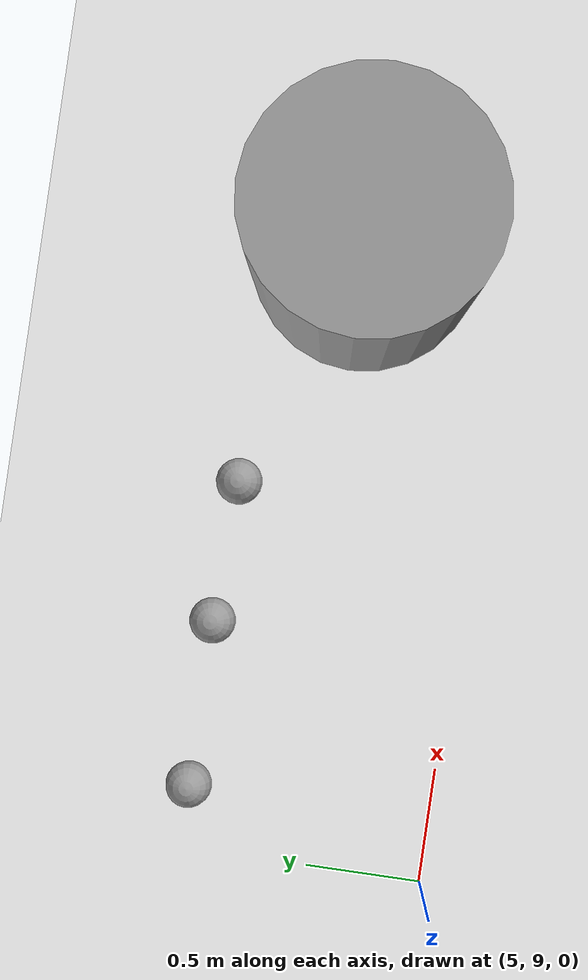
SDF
<sdf version="1.7">
 <world name="default">
  <model name="ground_plane">
   <static>1</static>
   <link name="link">
    <collision name="collision">
     <geometry><plane><normal>0 0 1</normal><size>100 100</size></plane></geometry>
     <surface><friction><ode><mu>100</mu><mu2>50</mu2></ode></friction></surface>
    </collision>
    <visual name="visual">
     <cast_shadows>0</cast_shadows>
     <geometry><plane><normal>0 0 1</normal><size>100 100</size></plane></geometry>
     <material>
      <script><uri>file://media/materials/scripts/gazebo.material</uri><name>Gazebo/White</name></script>
     </material>
    </visual>
   </link>
  </model>
  <model name="model2.9">
   <link name="link_9">
    <inertial>
     <mass>1</mass>
     <inertia><ixx>0.145833</ixx><ixy>0</ixy><ixz>0</ixz><iyy>0.145833</iyy><iyz>0</iyz><izz>0.125</izz></inertia>
    </inertial>
    <pose>3e-06 1e-06 0 0 -0 0</pose>
    <visual name="visual">
     <geometry><cylinder><radius>0.5</radius><length>1</length></cylinder></geometry>
     <material>
      <lighting>1</lighting>
      <script><uri>file://media/materials/scripts/gazebo.material</uri><name>Gazebo/Grey</name></script>
      <shader type="pixel"/>
     </material>
    </visual>
    <collision name="collision">
     <geometry><cylinder><radius>0.5</radius><length>1</length></cylinder></geometry>
     <surface>
      <friction>
       <ode><mu>1</mu><mu2>1</mu2><fdir1>0 0 0</fdir1><slip1>0</slip1><slip2>0</slip2></ode>
       <torsional>
        <coefficient>1</coefficient>
        <patch_radius>0</patch_radius>
        <surface_radius>0</surface_radius>
        <use_patch_radius>1</use_patch_radius>
        <ode><slip>0</slip></ode>
       </torsional>
      </friction>
      <bounce><restitution_coefficient>0</restitution_coefficient><threshold>1e+06</threshold></bounce>
      <contact>
       <collide_without_contact>0</collide_without_contact>
       <collide_without_contact_bitmask>1</collide_without_contact_bitmask>
       <collide_bitmask>1</collide_bitmask>
       <ode>
        <soft_cfm>0</soft_cfm>
        <soft_erp>0.2</soft_erp>
        <kp>1e+13</kp>
        <kd>1</kd>
        <max_vel>0</max_vel>
        <min_depth>0.001</min_depth>
       </ode>
       <bullet>
        <split_impulse>1</split_impulse>
        <split_impulse_penetration_threshold>-0.01</split_impulse_penetration_threshold>
        <soft_cfm>0</soft_cfm>
        <soft_erp>0.2</soft_erp>
        <kp>1e+13</kp>
        <kd>1</kd>
       </bullet>
      </contact>
     </surface>
    </collision>
   </link>
   <static>0</static>
   <pose>7.68386 9.62616 0.499 0 -0 0</pose>
  </model>
  <model name="sphere_7">
   <link name="link_0">
    <inertial>
     <mass>1</mass>
     <inertia><ixx>0.1</ixx><ixy>0</ixy><ixz>0</ixz><iyy>0.1</iyy><iyz>0</iyz><izz>0.1</izz></inertia>
    </inertial>
    <visual name="visual">
     <geometry><sphere><radius>0.1</radius></sphere></geometry>
     <material>
      <lighting>1</lighting>
      <script><uri>file://media/materials/scripts/gazebo.material</uri><name>Gazebo/Grey</name></script>
      <shader type="pixel"><normal_map>__default__</normal_map></shader>
      <ambient>0.3 0.3 0.3 1</ambient>
      <diffuse>0.7 0.7 0.7 1</diffuse>
      <specular>0.01 0.01 0.01 1</specular>
      <emissive>0 0 0 1</emissive>
     </material>
    </visual>
    <collision name="collision">
     <geometry><sphere><radius>0.1</radius></sphere></geometry>
     <surface>
      <friction>
       <ode><mu>1</mu><mu2>1</mu2><fdir1>0 0 0</fdir1><slip1>0</slip1><slip2>0</slip2></ode>
       <torsional>
        <coefficient>1</coefficient>
        <patch_radius>0</patch_radius>
        <surface_radius>0</surface_radius>
        <use_patch_radius>1</use_patch_radius>
        <ode><slip>0</slip></ode>
       </torsional>
      </friction>
      <bounce><restitution_coefficient>0</restitution_coefficient><threshold>1e+06</threshold></bounce>
      <contact>
       <collide_without_contact>0</collide_without_contact>
       <collide_without_contact_bitmask>1</collide_without_contact_bitmask>
       <collide_bitmask>1</collide_bitmask>
       <ode>
        <soft_cfm>0</soft_cfm>
        <soft_erp>0.2</soft_erp>
        <kp>1e+13</kp>
        <kd>1</kd>
        <max_vel>0.01</max_vel>
        <min_depth>0</min_depth>
       </ode>
       <bullet>
        <split_impulse>1</split_impulse>
        <split_impulse_penetration_threshold>-0.01</split_impulse_penetration_threshold>
        <soft_cfm>0</soft_cfm>
        <soft_erp>0.2</soft_erp>
        <kp>1e+13</kp>
        <kd>1</kd>
       </bullet>
      </contact>
     </surface>
    </collision>
   </link>
   <static>0</static>
   <pose>6.02009 10.0551 0.1 0 -0 0</pose>
  </model>
  <model name="sphere_8">
   <link name="link_0">
    <inertial>
     <mass>1</mass>
     <inertia><ixx>0.1</ixx><ixy>0</ixy><ixz>0</ixz><iyy>0.1</iyy><iyz>0</iyz><izz>0.1</izz></inertia>
    </inertial>
    <visual name="visual">
     <geometry><sphere><radius>0.1</radius></sphere></geometry>
     <material>
      <lighting>1</lighting>
      <script><uri>file://media/materials/scripts/gazebo.material</uri><name>Gazebo/Grey</name></script>
      <shader type="pixel"><normal_map>__default__</normal_map></shader>
      <ambient>0.3 0.3 0.3 1</ambient>
      <diffuse>0.7 0.7 0.7 1</diffuse>
      <specular>0.01 0.01 0.01 1</specular>
      <emissive>0 0 0 1</emissive>
     </material>
    </visual>
    <collision name="collision">
     <geometry><sphere><radius>0.1</radius></sphere></geometry>
     <surface>
      <friction>
       <ode><mu>1</mu><mu2>1</mu2><fdir1>0 0 0</fdir1><slip1>0</slip1><slip2>0</slip2></ode>
       <torsional>
        <coefficient>1</coefficient>
        <patch_radius>0</patch_radius>
        <surface_radius>0</surface_radius>
        <use_patch_radius>1</use_patch_radius>
        <ode><slip>0</slip></ode>
       </torsional>
      </friction>
      <bounce><restitution_coefficient>0</restitution_coefficient><threshold>1e+06</threshold></bounce>
      <contact>
       <collide_without_contact>0</collide_without_contact>
       <collide_without_contact_bitmask>1</collide_without_contact_bitmask>
       <collide_bitmask>1</collide_bitmask>
       <ode>
        <soft_cfm>0</soft_cfm>
        <soft_erp>0.2</soft_erp>
        <kp>1e+13</kp>
        <kd>1</kd>
        <max_vel>0.01</max_vel>
        <min_depth>0</min_depth>
       </ode>
       <bullet>
        <split_impulse>1</split_impulse>
        <split_impulse_penetration_threshold>-0.01</split_impulse_penetration_threshold>
        <soft_cfm>0</soft_cfm>
        <soft_erp>0.2</soft_erp>
        <kp>1e+13</kp>
        <kd>1</kd>
       </bullet>
      </contact>
     </surface>
    </collision>
   </link>
   <static>0</static>
   <pose>6.63051 10.0275 0.1 0 -0 0</pose>
  </model>
  <model name="sphere_9">
   <link name="link_0">
    <inertial>
     <mass>1</mass>
     <inertia><ixx>0.1</ixx><ixy>0</ixy><ixz>0</ixz><iyy>0.1</iyy><iyz>0</iyz><izz>0.1</izz></inertia>
    </inertial>
    <visual name="visual">
     <geometry><sphere><radius>0.1</radius></sphere></geometry>
     <material>
      <lighting>1</lighting>
      <script><uri>file://media/materials/scripts/gazebo.material</uri><name>Gazebo/Grey</name></script>
      <shader type="pixel"><normal_map>__default__</normal_map></shader>
      <ambient>0.3 0.3 0.3 1</ambient>
      <diffuse>0.7 0.7 0.7 1</diffuse>
      <specular>0.01 0.01 0.01 1</specular>
      <emissive>0 0 0 1</emissive>
     </material>
    </visual>
    <collision name="collision">
     <geometry><sphere><radius>0.1</radius></sphere></geometry>
     <surface>
      <friction>
       <ode><mu>1</mu><mu2>1</mu2><fdir1>0 0 0</fdir1><slip1>0</slip1><slip2>0</slip2></ode>
       <torsional>
        <coefficient>1</coefficient>
        <patch_radius>0</patch_radius>
        <surface_radius>0</surface_radius>
        <use_patch_radius>1</use_patch_radius>
        <ode><slip>0</slip></ode>
       </torsional>
      </friction>
      <bounce><restitution_coefficient>0</restitution_coefficient><threshold>1e+06</threshold></bounce>
      <contact>
       <collide_without_contact>0</collide_without_contact>
       <collide_without_contact_bitmask>1</collide_without_contact_bitmask>
       <collide_bitmask>1</collide_bitmask>
       <ode>
        <soft_cfm>0</soft_cfm>
        <soft_erp>0.2</soft_erp>
        <kp>1e+13</kp>
        <kd>1</kd>
        <max_vel>0.01</max_vel>
        <min_depth>0</min_depth>
       </ode>
       <bullet>
        <split_impulse>1</split_impulse>
        <split_impulse_penetration_threshold>-0.01</split_impulse_penetration_threshold>
        <soft_cfm>0</soft_cfm>
        <soft_erp>0.2</soft_erp>
        <kp>1e+13</kp>
        <kd>1</kd>
       </bullet>
      </contact>
     </surface>
    </collision>
   </link>
   <static>0</static>
   <pose>5.30576 10.0556 0.1 0 -0 0</pose>
  </model>
 </world>
</sdf>
